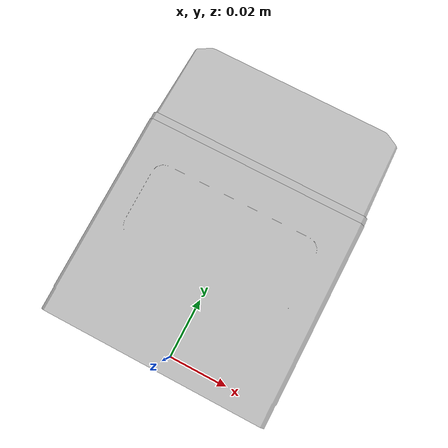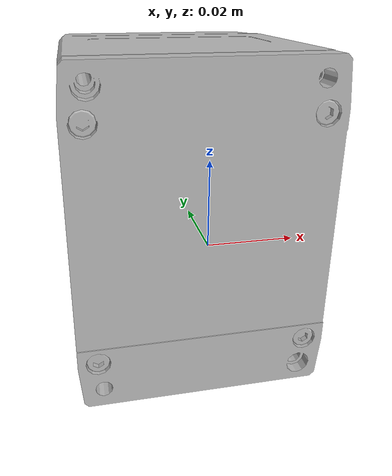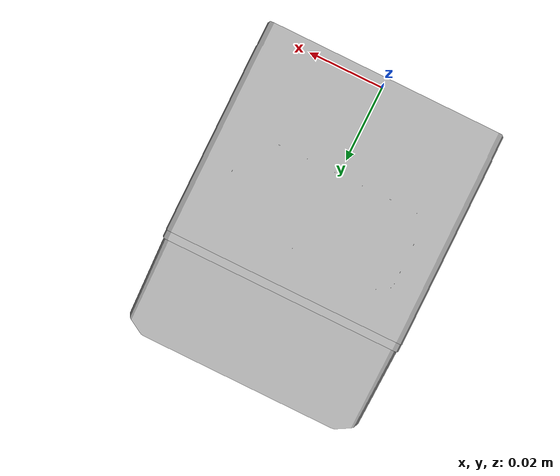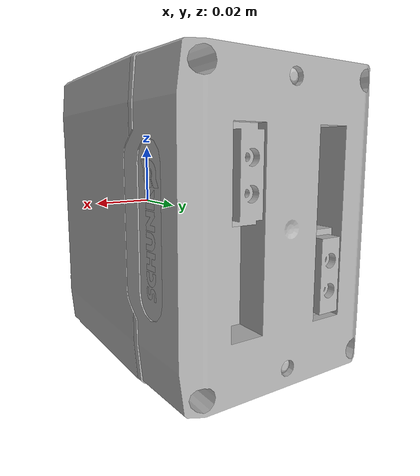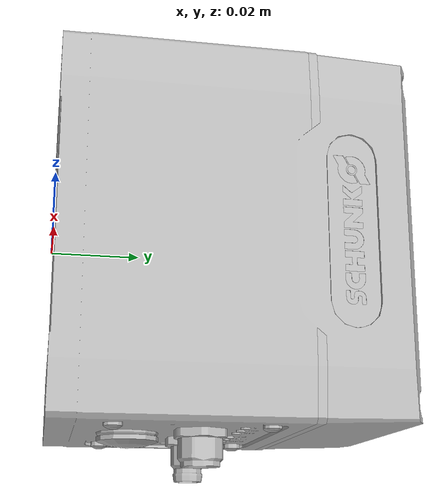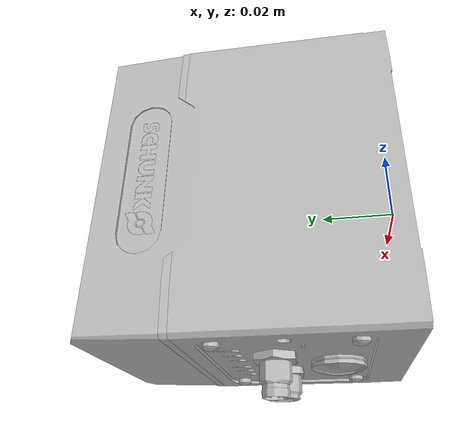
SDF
<?xml version='1.0' encoding='utf-8'?>
<sdf version="1.11" intrinsic="https://intrinsic.ai/">
  <model name="egk_25">
    <link name="SCHUNK_1491752_EGK_25_PN_M_B_000ohne0">
      <inertial>
        <pose>0.0 0.041979 0.0 0 -0 0</pose>
        <mass>0.15</mass>
      </inertial>
      <collision name="SCHUNK_1491752_EGK_25_PN_M_B_000ohne0_fixed_joint_lump__SCHUNK__Gehaeuse_EGK_25_PN_EI_0_0_collision">
        <pose>0.0 0.0 0.0 0 -0 0</pose>
        <geometry>
          <mesh>
            <scale>1 1 1</scale>
            <uri>SCHUNK__Gehaeuse_EGK_25_PN_EI_0_1.obj</uri>
          </mesh>
        </geometry>
      </collision>
      <collision name="SCHUNK_1491752_EGK_25_PN_M_B_000ohne0_fixed_joint_lump__SCHUNK__Gehaeuse_EGK_25_PN_EI_0_0_collision_1">
        <pose>0.0 0.0 0.0 0 -0 0</pose>
        <geometry>
          <mesh>
            <scale>1 1 1</scale>
            <uri>SCHUNK__Gehaeuse_EGK_25_PN_EI_0_2.obj</uri>
          </mesh>
        </geometry>
      </collision>
      <collision name="SCHUNK_1491752_EGK_25_PN_M_B_000ohne0_fixed_joint_lump__SCHUNK__Gehaeuse_EGK_25_PN_EI_0_0_collision_2">
        <pose>0.0 0.0 0.0 0 -0 0</pose>
        <geometry>
          <mesh>
            <scale>1 1 1</scale>
            <uri>SCHUNK__Gehaeuse_EGK_25_PN_EI_0_3.obj</uri>
          </mesh>
        </geometry>
      </collision>
      <collision name="SCHUNK_1491752_EGK_25_PN_M_B_000ohne0_fixed_joint_lump__SCHUNK__Gehaeuse_EGK_25_PN_EI_0_0_collision_3">
        <pose>0.0 0.0 0.0 0 -0 0</pose>
        <geometry>
          <mesh>
            <scale>1 1 1</scale>
            <uri>SCHUNK__Gehaeuse_EGK_25_PN_EI_0_4.obj</uri>
          </mesh>
        </geometry>
      </collision>
      <collision name="SCHUNK_1491752_EGK_25_PN_M_B_000ohne0_fixed_joint_lump__SCHUNK_9905503_Typenschild_11x43x0_3_1_collision_4">
        <pose>0.0297532 0.06296840000000001 0.0 -3.10669 -1.5708 0</pose>
        <geometry>
          <mesh>
            <scale>1 1 1</scale>
            <uri>SCHUNK_9905503_Typenschild_11x43x0_3_5.obj</uri>
          </mesh>
        </geometry>
      </collision>
      <collision name="SCHUNK_1491752_EGK_25_PN_M_B_000ohne0_fixed_joint_lump__SCHUNK_9905503_Typenschild_11x43x0_3_1_collision_5">
        <pose>0.0297532 0.06296840000000001 0.0 -3.10669 -1.5708 0</pose>
        <geometry>
          <mesh>
            <scale>1 1 1</scale>
            <uri>SCHUNK_9905503_Typenschild_11x43x0_3_6.obj</uri>
          </mesh>
        </geometry>
      </collision>
      <collision name="SCHUNK_1491752_EGK_25_PN_M_B_000ohne0_fixed_joint_lump__SCHUNK_9905503_Typenschild_11x43x0_3_1_collision_6">
        <pose>0.0297532 0.06296840000000001 0.0 -3.10669 -1.5708 0</pose>
        <geometry>
          <mesh>
            <scale>1 1 1</scale>
            <uri>SCHUNK_9905503_Typenschild_11x43x0_3_7.obj</uri>
          </mesh>
        </geometry>
      </collision>
      <collision name="SCHUNK_1491752_EGK_25_PN_M_B_000ohne0_fixed_joint_lump__SCHUNK_9905503_Typenschild_11x43x0_3_1_collision_7">
        <pose>0.0297532 0.06296840000000001 0.0 -3.10669 -1.5708 0</pose>
        <geometry>
          <mesh>
            <scale>1 1 1</scale>
            <uri>SCHUNK_9905503_Typenschild_11x43x0_3_8.obj</uri>
          </mesh>
        </geometry>
      </collision>
      <collision name="SCHUNK_1491752_EGK_25_PN_M_B_000ohne0_fixed_joint_lump__SCHUNK_9905503_Typenschild_11x43x0_3_2_collision_8">
        <pose>-0.0297532 0.06296840000000001 -0.0 -3.10669 1.5708 0</pose>
        <geometry>
          <mesh>
            <scale>1 1 1</scale>
            <uri>SCHUNK_9905503_Typenschild_11x43x0_3_9.obj</uri>
          </mesh>
        </geometry>
      </collision>
      <collision name="SCHUNK_1491752_EGK_25_PN_M_B_000ohne0_fixed_joint_lump__SCHUNK_9905503_Typenschild_11x43x0_3_2_collision_9">
        <pose>-0.0297532 0.06296840000000001 -0.0 -3.10669 1.5708 0</pose>
        <geometry>
          <mesh>
            <scale>1 1 1</scale>
            <uri>SCHUNK_9905503_Typenschild_11x43x0_3_10.obj</uri>
          </mesh>
        </geometry>
      </collision>
      <collision name="SCHUNK_1491752_EGK_25_PN_M_B_000ohne0_fixed_joint_lump__SCHUNK_9905503_Typenschild_11x43x0_3_2_collision_10">
        <pose>-0.0297532 0.06296840000000001 -0.0 -3.10669 1.5708 0</pose>
        <geometry>
          <mesh>
            <scale>1 1 1</scale>
            <uri>SCHUNK_9905503_Typenschild_11x43x0_3_11.obj</uri>
          </mesh>
        </geometry>
      </collision>
      <collision name="SCHUNK_1491752_EGK_25_PN_M_B_000ohne0_fixed_joint_lump__SCHUNK_9905503_Typenschild_11x43x0_3_2_collision_11">
        <pose>-0.0297532 0.06296840000000001 -0.0 -3.10669 1.5708 0</pose>
        <geometry>
          <mesh>
            <scale>1 1 1</scale>
            <uri>SCHUNK_9905503_Typenschild_11x43x0_3_12.obj</uri>
          </mesh>
        </geometry>
      </collision>
      <visual name="SCHUNK_1491752_EGK_25_PN_M_B_000ohne0_fixed_joint_lump__SCHUNK__Gehaeuse_EGK_25_PN_EI_0_0_visual">
        <pose>0.0 0.0 0.0 0 -0 0</pose>
        <geometry>
          <mesh>
            <scale>1 1 1</scale>
            <uri>SCHUNK__Gehaeuse_EGK_25_PN_EI_0_1.obj</uri>
          </mesh>
        </geometry>
      </visual>
      <visual name="SCHUNK_1491752_EGK_25_PN_M_B_000ohne0_fixed_joint_lump__SCHUNK__Gehaeuse_EGK_25_PN_EI_0_0_visual_1">
        <pose>0.0 0.0 0.0 0 -0 0</pose>
        <geometry>
          <mesh>
            <scale>1 1 1</scale>
            <uri>SCHUNK__Gehaeuse_EGK_25_PN_EI_0_2.obj</uri>
          </mesh>
        </geometry>
      </visual>
      <visual name="SCHUNK_1491752_EGK_25_PN_M_B_000ohne0_fixed_joint_lump__SCHUNK__Gehaeuse_EGK_25_PN_EI_0_0_visual_2">
        <pose>0.0 0.0 0.0 0 -0 0</pose>
        <geometry>
          <mesh>
            <scale>1 1 1</scale>
            <uri>SCHUNK__Gehaeuse_EGK_25_PN_EI_0_3.obj</uri>
          </mesh>
        </geometry>
      </visual>
      <visual name="SCHUNK_1491752_EGK_25_PN_M_B_000ohne0_fixed_joint_lump__SCHUNK__Gehaeuse_EGK_25_PN_EI_0_0_visual_3">
        <pose>0.0 0.0 0.0 0 -0 0</pose>
        <geometry>
          <mesh>
            <scale>1 1 1</scale>
            <uri>SCHUNK__Gehaeuse_EGK_25_PN_EI_0_4.obj</uri>
          </mesh>
        </geometry>
      </visual>
      <visual name="SCHUNK_1491752_EGK_25_PN_M_B_000ohne0_fixed_joint_lump__SCHUNK_9905503_Typenschild_11x43x0_3_1_visual_4">
        <pose>0.0297532 0.06296840000000001 0.0 -3.10669 -1.5708 0</pose>
        <geometry>
          <mesh>
            <scale>1 1 1</scale>
            <uri>SCHUNK_9905503_Typenschild_11x43x0_3_5.obj</uri>
          </mesh>
        </geometry>
      </visual>
      <visual name="SCHUNK_1491752_EGK_25_PN_M_B_000ohne0_fixed_joint_lump__SCHUNK_9905503_Typenschild_11x43x0_3_1_visual_5">
        <pose>0.0297532 0.06296840000000001 0.0 -3.10669 -1.5708 0</pose>
        <geometry>
          <mesh>
            <scale>1 1 1</scale>
            <uri>SCHUNK_9905503_Typenschild_11x43x0_3_6.obj</uri>
          </mesh>
        </geometry>
      </visual>
      <visual name="SCHUNK_1491752_EGK_25_PN_M_B_000ohne0_fixed_joint_lump__SCHUNK_9905503_Typenschild_11x43x0_3_1_visual_6">
        <pose>0.0297532 0.06296840000000001 0.0 -3.10669 -1.5708 0</pose>
        <geometry>
          <mesh>
            <scale>1 1 1</scale>
            <uri>SCHUNK_9905503_Typenschild_11x43x0_3_7.obj</uri>
          </mesh>
        </geometry>
      </visual>
      <visual name="SCHUNK_1491752_EGK_25_PN_M_B_000ohne0_fixed_joint_lump__SCHUNK_9905503_Typenschild_11x43x0_3_1_visual_7">
        <pose>0.0297532 0.06296840000000001 0.0 -3.10669 -1.5708 0</pose>
        <geometry>
          <mesh>
            <scale>1 1 1</scale>
            <uri>SCHUNK_9905503_Typenschild_11x43x0_3_8.obj</uri>
          </mesh>
        </geometry>
      </visual>
      <visual name="SCHUNK_1491752_EGK_25_PN_M_B_000ohne0_fixed_joint_lump__SCHUNK_9905503_Typenschild_11x43x0_3_2_visual_8">
        <pose>-0.0297532 0.06296840000000001 -0.0 -3.10669 1.5708 0</pose>
        <geometry>
          <mesh>
            <scale>1 1 1</scale>
            <uri>SCHUNK_9905503_Typenschild_11x43x0_3_9.obj</uri>
          </mesh>
        </geometry>
      </visual>
      <visual name="SCHUNK_1491752_EGK_25_PN_M_B_000ohne0_fixed_joint_lump__SCHUNK_9905503_Typenschild_11x43x0_3_2_visual_9">
        <pose>-0.0297532 0.06296840000000001 -0.0 -3.10669 1.5708 0</pose>
        <geometry>
          <mesh>
            <scale>1 1 1</scale>
            <uri>SCHUNK_9905503_Typenschild_11x43x0_3_10.obj</uri>
          </mesh>
        </geometry>
      </visual>
      <visual name="SCHUNK_1491752_EGK_25_PN_M_B_000ohne0_fixed_joint_lump__SCHUNK_9905503_Typenschild_11x43x0_3_2_visual_10">
        <pose>-0.0297532 0.06296840000000001 -0.0 -3.10669 1.5708 0</pose>
        <geometry>
          <mesh>
            <scale>1 1 1</scale>
            <uri>SCHUNK_9905503_Typenschild_11x43x0_3_11.obj</uri>
          </mesh>
        </geometry>
      </visual>
      <visual name="SCHUNK_1491752_EGK_25_PN_M_B_000ohne0_fixed_joint_lump__SCHUNK_9905503_Typenschild_11x43x0_3_2_visual_11">
        <pose>-0.0297532 0.06296840000000001 -0.0 -3.10669 1.5708 0</pose>
        <geometry>
          <mesh>
            <scale>1 1 1</scale>
            <uri>SCHUNK_9905503_Typenschild_11x43x0_3_12.obj</uri>
          </mesh>
        </geometry>
      </visual>
    </link>
    <joint name="Finger_Drive" type="prismatic">
      <pose relative_to="SCHUNK_1491752_EGK_25_PN_M_B_000ohne0">0.0 3e-09 0.0 0 0 0</pose>
      <parent>SCHUNK_1491752_EGK_25_PN_M_B_000ohne0</parent>
      <child>SCHUNK_1500102Grundbacke_EGK_25_3</child>
      <axis>
        <xyz>0 0 1</xyz>
        <limit>
          <lower>0</lower>
          <upper>0.0265</upper>
          <effort>1e+07</effort>
          <velocity>0</velocity>
        </limit>
        <dynamics>
          <spring_reference>0</spring_reference>
          <spring_stiffness>0</spring_stiffness>
        </dynamics>
      </axis>
    </joint>
    <link name="SCHUNK_1500102Grundbacke_EGK_25_3">
      <pose relative_to="Finger_Drive">0.0 0.0 0.0 0 -0 0</pose>
      <inertial>
        <pose>0.0 0.0 0.0 0 -0 0</pose>
        <mass>0.05</mass>
      </inertial>
      <collision name="SCHUNK_1500102Grundbacke_EGK_25_3_collision">
        <pose>-0.01314 0.0702 -0.01325 0 1.5708 0</pose>
        <geometry>
          <mesh>
            <scale>1 1 1</scale>
            <uri>SCHUNK_1500102Grundbacke_EGK_25_13.obj</uri>
          </mesh>
        </geometry>
      </collision>
      <visual name="SCHUNK_1500102Grundbacke_EGK_25_3_visual">
        <pose>-0.01314 0.0702 -0.01325 0 1.5708 0</pose>
        <geometry>
          <mesh>
            <scale>1 1 1</scale>
            <uri>SCHUNK_1500102Grundbacke_EGK_25_13.obj</uri>
          </mesh>
        </geometry>
      </visual>
    </link>
    <joint name="PrismaticJoint0" type="prismatic">
      <pose relative_to="SCHUNK_1491752_EGK_25_PN_M_B_000ohne0">-0.0 3e-09 0.0 0 -0 0</pose>
      <parent>SCHUNK_1491752_EGK_25_PN_M_B_000ohne0</parent>
      <child>SCHUNK_1500102Grundbacke_EGK_25_4</child>
      <axis>
        <xyz>0 0 1</xyz>
        <limit>
          <lower>-0.0265</lower>
          <upper>0</upper>
          <effort>0</effort>
          <velocity>0</velocity>
        </limit>
        <dynamics>
          <spring_reference>0</spring_reference>
          <spring_stiffness>0</spring_stiffness>
        </dynamics>
      </axis>
    </joint>
    <link name="SCHUNK_1500102Grundbacke_EGK_25_4">
      <pose relative_to="PrismaticJoint0">0.0 0.0 0.0 0 -0 0</pose>
      <inertial>
        <pose>0.0 0.0 0.0 0 -0 0</pose>
        <mass>0.05</mass>
      </inertial>
      <collision name="SCHUNK_1500102Grundbacke_EGK_25_4_collision">
        <pose>0.01314 0.0702 0.01325 0 -1.5708 0</pose>
        <geometry>
          <mesh>
            <scale>1 1 1</scale>
            <uri>SCHUNK_1500102Grundbacke_EGK_25_14.obj</uri>
          </mesh>
        </geometry>
      </collision>
      <visual name="SCHUNK_1500102Grundbacke_EGK_25_4_visual">
        <pose>0.01314 0.0702 0.01325 0 -1.5708 0</pose>
        <geometry>
          <mesh>
            <scale>1 1 1</scale>
            <uri>SCHUNK_1500102Grundbacke_EGK_25_14.obj</uri>
          </mesh>
        </geometry>
      </visual>
    </link>
  </model>
  </sdf>
